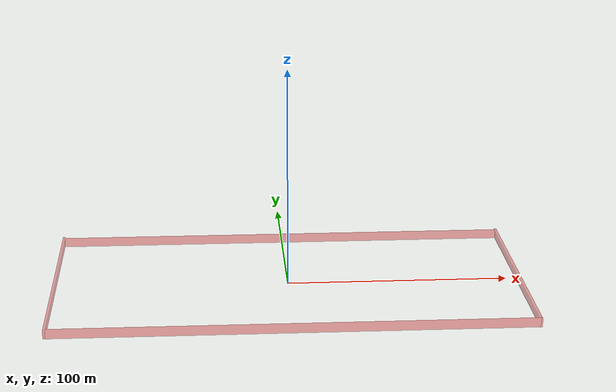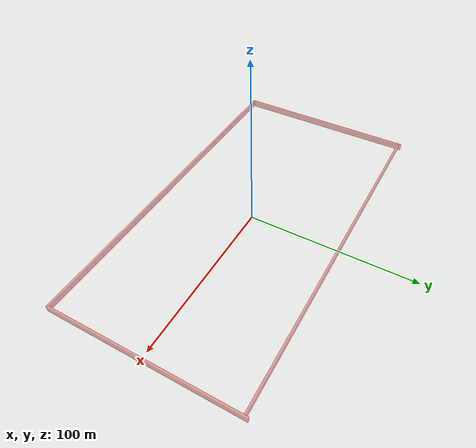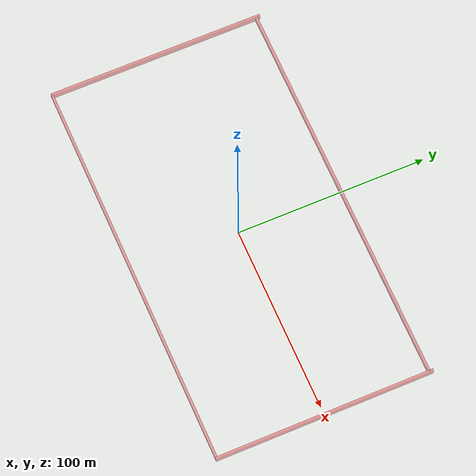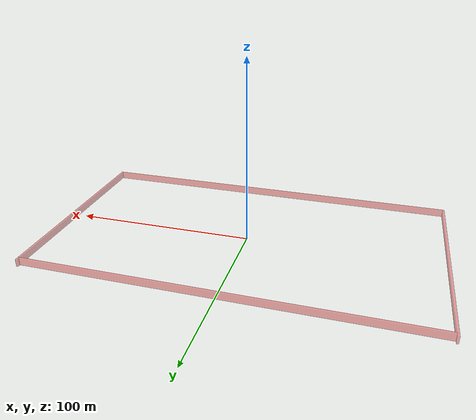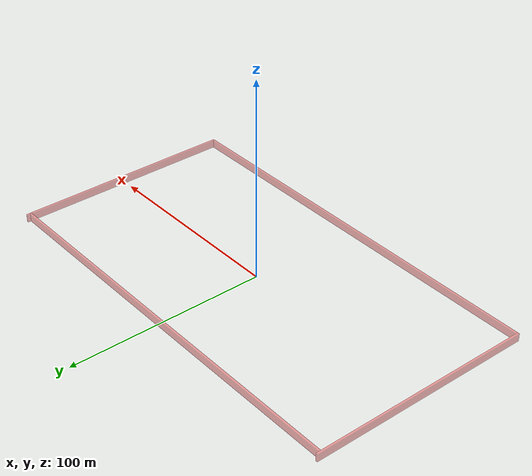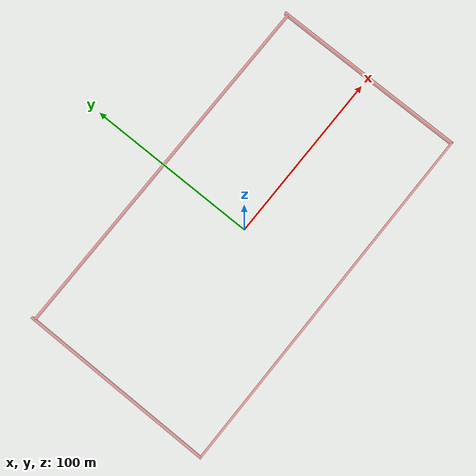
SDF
<sdf version="1.6">
 <world name="mars_gazebo_topography_map_only">
  <model_plugin_loading_timeout>600</model_plugin_loading_timeout>
  <physics type="ode">
   <max_step_size>0.001</max_step_size>
   <real_time_update_rate>1000</real_time_update_rate>
   <real_time_factor>1.0</real_time_factor>
   <gravity>0 0 -9.8</gravity>
  </physics>
  <scene>
   <ambient>0.45 0.45 0.45 1</ambient>
   <background>0.75 0.75 0.75 1</background>
   <shadows>true</shadows>
  </scene>
  <include><uri>model://sun</uri></include>
  <model name="boundary_walls">
   <static>true</static>
   <link name="north_wall">
    <pose>0 55 2.0 0 0 0</pose>
    <collision name="collision"><geometry><box><size>210 1.0 4.0</size></box></geometry></collision>
    <visual name="visual">
     <geometry><box><size>210 1.0 4.0</size></box></geometry>
     <material><ambient>0.85 0.15 0.15 0.45</ambient><diffuse>0.90 0.20 0.20 0.45</diffuse></material>
    </visual>
   </link>
   <link name="south_wall">
    <pose>0 -56.5 2.0 0 0 0</pose>
    <collision name="collision"><geometry><box><size>210 1.0 4.0</size></box></geometry></collision>
    <visual name="visual">
     <geometry><box><size>210 1.0 4.0</size></box></geometry>
     <material><ambient>0.85 0.15 0.15 0.45</ambient><diffuse>0.90 0.20 0.20 0.45</diffuse></material>
    </visual>
   </link>
   <link name="east_wall">
    <pose>105 0 2.0 0 0 0</pose>
    <collision name="collision"><geometry><box><size>1.0 114 4.0</size></box></geometry></collision>
    <visual name="visual">
     <geometry><box><size>1.0 114 4.0</size></box></geometry>
     <material><ambient>0.85 0.15 0.15 0.45</ambient><diffuse>0.90 0.20 0.20 0.45</diffuse></material>
    </visual>
   </link>
   <link name="west_wall">
    <pose>-105.5 0 2.0 0 0 0</pose>
    <collision name="collision"><geometry><box><size>1.0 114 4.0</size></box></geometry></collision>
    <visual name="visual">
     <geometry><box><size>1.0 114 4.0</size></box></geometry>
     <material><ambient>0.85 0.15 0.15 0.45</ambient><diffuse>0.90 0.20 0.20 0.45</diffuse></material>
    </visual>
   </link>
  </model>
 </world>
</sdf>
